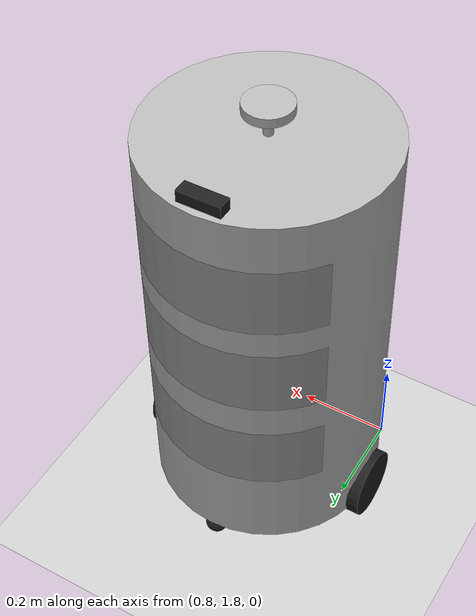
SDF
<sdf version="1.7">
 <world name="world">
  <gravity>0 0 -9.8</gravity>
  <physics name="default_physics" default="0" type="ode">
   <max_step_size>0.001</max_step_size>
   <real_time_factor>1</real_time_factor>
   <real_time_update_rate>1000</real_time_update_rate>
  </physics>
  <scene><ambient>0.6 0.6 0.6 1</ambient><background>0.4 0.4 0.4 1</background><shadows>0</shadows></scene>
  <light name="sun" type="directional">
   <pose>0 0 10 0 -0 0</pose>
   <diffuse>0.8 0.8 0.8 1</diffuse>
   <specular>0.2 0.2 0.2 1</specular>
   <attenuation>
    <range>1000</range>
    <constant>0.9</constant>
    <linear>0.01</linear>
    <quadratic>0.001</quadratic>
   </attenuation>
   <direction>-0.5 0.1 -0.9</direction>
   <spot><inner_angle>0</inner_angle><outer_angle>0</outer_angle><falloff>0</falloff></spot>
  </light>
  <model name="ground_plane">
   <static>1</static>
   <link name="link">
    <collision name="collision">
     <geometry><plane><normal>0 0 1</normal><size>100 100</size></plane></geometry>
     <surface>
      <contact><collide_bitmask>65535</collide_bitmask></contact>
      <friction><ode><mu>100</mu><mu2>50</mu2></ode></friction>
     </surface>
    </collision>
    <visual name="visual">
     <cast_shadows>0</cast_shadows>
     <geometry><plane><normal>0 0 1</normal><size>100 100</size></plane></geometry>
     <material>
      <script><uri>file://media/materials/scripts/gazebo.material</uri><name>Gazebo/Grey</name></script>
     </material>
    </visual>
   </link>
   <pose>0 0 -0.1 0 -0 0</pose>
  </model>
  <magnetic_field>6e-06 2.3e-05 -4.2e-05</magnetic_field>
  <atmosphere type="adiabatic"/>
  <spherical_coordinates>
   <surface_model>EARTH_WGS84</surface_model>
   <latitude_deg>0</latitude_deg>
   <longitude_deg>0</longitude_deg>
   <elevation>0</elevation>
   <heading_deg>0</heading_deg>
  </spherical_coordinates>
  <model name="mycar">
   <link name="base_footprint">
    <inertial>
     <pose>0.006055 0 0.540161 0 -0 0</pose>
     <mass>5.45</mass>
     <inertia>
      <ixx>0.513803</ixx>
      <ixy>0</ixy>
      <ixz>-0.0139372</ixz>
      <iyy>0.520863</iyy>
      <iyz>0</iyz>
      <izz>0.16361</izz>
     </inertia>
    </inertial>
    <collision name="base_footprint_fixed_joint_lump__base_link_collision">
     <pose>0 0 0.5 0 -0 0</pose>
     <geometry>
      <mesh><scale>1 1 1</scale><uri>/home/zj/graduate_design/src/zj_base/meshes/modle.dae</uri></mesh>
     </geometry>
    </collision>
    <collision name="base_footprint_fixed_joint_lump__depth_camera_collision_1">
     <pose>0.22 0 0.9625 0 -0 1.5705</pose>
     <geometry><box><size>0.09 0.03 0.025</size></box></geometry>
    </collision>
    <collision name="base_footprint_fixed_joint_lump__suport_collision_2">
     <pose>0 0 0.975 0 -0 0</pose>
     <geometry><cylinder><length>0.05</length><radius>0.01</radius></cylinder></geometry>
    </collision>
    <collision name="base_footprint_fixed_joint_lump__laser_collision_3">
     <pose>0 0 1.01 0 -0 0</pose>
     <geometry><cylinder><length>0.02</length><radius>0.05</radius></cylinder></geometry>
    </collision>
    <visual name="base_footprint_visual"><geometry><sphere><radius>0.001</radius></sphere></geometry></visual>
    <visual name="base_footprint_fixed_joint_lump__base_link_visual_1">
     <pose>0 0 0.5 0 -0 0</pose>
     <geometry>
      <mesh><scale>1 1 1</scale><uri>/home/zj/graduate_design/src/zj_base/meshes/modle.dae</uri></mesh>
     </geometry>
    </visual>
    <visual name="base_footprint_fixed_joint_lump__depth_camera_visual_2">
     <pose>0.22 0 0.9625 0 -0 1.5705</pose>
     <geometry><box><size>0.09 0.03 0.025</size></box></geometry>
     <material>
      <script><name>Gazebo/Black</name><uri>file://media/materials/scripts/gazebo.material</uri></script>
     </material>
    </visual>
    <visual name="base_footprint_fixed_joint_lump__suport_visual_3">
     <pose>0 0 0.975 0 -0 0</pose>
     <geometry><cylinder><length>0.05</length><radius>0.01</radius></cylinder></geometry>
    </visual>
    <visual name="base_footprint_fixed_joint_lump__laser_visual_4">
     <pose>0 0 1.01 0 -0 0</pose>
     <geometry><cylinder><length>0.02</length><radius>0.05</radius></cylinder></geometry>
    </visual>
    <sensor name="depth_camera_node" type="depth">
     <update_rate>30</update_rate>
     <camera name="depth_head">
      <horizontal_fov>1.52</horizontal_fov>
      <image><width>640</width><height>480</height><format>L8</format></image>
      <clip><near>0.2</near><far>10</far></clip>
      <noise><type>gaussian</type><mean>0</mean><stddev>0.01</stddev></noise>
     </camera>
     <plugin name="gazebo_depth_camera" filename="libgazebo_ros_depth_camera.so">
      <alwaysOn>1</alwaysOn>
      <updateRate>0.0</updateRate>
      <cameraName>/depth_camera</cameraName>
      <depthImageTopicName>depth/image_raw</depthImageTopicName>
      <depthImageCameraInfoTopicName>depth/camera_info</depthImageCameraInfoTopicName>
      <pointCloudTopicName>depth/points</pointCloudTopicName>
      <pointCloudSkip>2</pointCloudSkip>
      <frameName>depth_camera</frameName>
      <pointCloudCutoff>0.2</pointCloudCutoff>
      <pointCloudCutoffMax>8.0</pointCloudCutoffMax>
      <hackBaseline>0.05</hackBaseline>
      <distortionK1>0.0</distortionK1>
      <distortionK2>0.0</distortionK2>
      <distortionK3>0.0</distortionK3>
      <distortionT1>0.0</distortionT1>
      <distortionT2>0.0</distortionT2>
      <robotNamespace>/</robotNamespace>
     </plugin>
     <pose>0.22 0 0.9625 0 -0 0</pose>
     <depth><shift>0.0</shift><noise><type>gaussian</type><mean>0.0</mean><stddev>0.02</stddev></noise></depth>
    </sensor>
    <sensor name="rplidar" type="ray">
     <visualize>0</visualize>
     <update_rate>5.5</update_rate>
     <ray>
      <scan>
       <horizontal>
        <samples>360</samples>
        <resolution>1</resolution>
        <min_angle>-3.14159</min_angle>
        <max_angle>3.14159</max_angle>
       </horizontal>
       <vertical><samples>1</samples><min_angle>0</min_angle><max_angle>0</max_angle></vertical>
      </scan>
      <range><min>0.1</min><max>30</max><resolution>0.01</resolution></range>
      <noise><type>gaussian</type><mean>0</mean><stddev>0.01</stddev></noise>
     </ray>
     <plugin name="gazebo_rplidar" filename="libgazebo_ros_laser.so">
      <topicName>/scan</topicName>
      <frameName>laser</frameName>
      <robotNamespace>/</robotNamespace>
     </plugin>
     <pose>0 0 1.01 0 -0 0</pose>
    </sensor>
   </link>
   <joint name="back_wheel2base_link" type="revolute">
    <pose relative_to="base_footprint">-0.225 0 0.025 0 -0 0</pose>
    <parent>base_footprint</parent>
    <child>back_wheel</child>
    <axis>
     <xyz>1 0 0</xyz>
     <limit><lower>-1e+16</lower><upper>1e+16</upper></limit>
     <dynamics><spring_reference>0</spring_reference><spring_stiffness>0</spring_stiffness></dynamics>
    </axis>
   </joint>
   <link name="back_wheel">
    <pose relative_to="back_wheel2base_link">0 0 0 0 -0 0</pose>
    <inertial>
     <mass>0.1</mass>
     <inertia><ixx>2.5e-05</ixx><ixy>0</ixy><ixz>0</ixz><iyy>2.5e-05</iyy><iyz>0</iyz><izz>2.5e-05</izz></inertia>
    </inertial>
    <collision name="back_wheel_collision">
     <geometry><sphere><radius>0.025</radius></sphere></geometry>
     <surface>
      <contact><ode><kp>1e+06</kp><kd>100</kd></ode></contact>
      <friction><ode><mu>0</mu><mu2>0</mu2></ode></friction>
     </surface>
    </collision>
    <visual name="back_wheel_visual">
     <geometry><sphere><radius>0.025</radius></sphere></geometry>
     <material>
      <script><name>Gazebo/Black</name><uri>file://media/materials/scripts/gazebo.material</uri></script>
     </material>
    </visual>
   </link>
   <joint name="drawer22base_link" type="prismatic">
    <pose relative_to="base_footprint">0 0 0.5 0 -0 0</pose>
    <parent>base_footprint</parent>
    <child>drawer2</child>
    <axis>
     <xyz>1 0 0</xyz>
     <limit><lower>0</lower><upper>0.2</upper><effort>1000</effort><velocity>2</velocity></limit>
     <dynamics>
      <damping>0.1</damping>
      <friction>0</friction>
      <spring_reference>0</spring_reference>
      <spring_stiffness>0</spring_stiffness>
     </dynamics>
    </axis>
    <physics>
     <provide_feedback>1</provide_feedback>
     <ode><limit><cfm>0</cfm><erp>0.9</erp></limit><provide_feedback>1</provide_feedback></ode>
    </physics>
    <physics>
     <ode>
      <limit><cfm>0</cfm><erp>0.9</erp></limit>
      <suspension><cfm>0</cfm><erp>0.9</erp></suspension>
      <fdir1>1 0 0</fdir1>
      <friction>1.0 0.8 0.0</friction>
     </ode>
    </physics>
   </joint>
   <link name="drawer2">
    <pose relative_to="drawer22base_link">0 0 0 0 -0 0</pose>
    <inertial>
     <mass>2</mass>
     <inertia><ixx>0.001</ixx><ixy>0</ixy><ixz>0</ixz><iyy>0.001</iyy><iyz>0</iyz><izz>0.001</izz></inertia>
    </inertial>
    <collision name="drawer2_collision">
     <geometry>
      <mesh><scale>1 1 1</scale><uri>/home/zj/graduate_design/src/zj_base/meshes/box2.dae</uri></mesh>
     </geometry>
     <surface>
      <contact><ode><kp>1e+12</kp><kd>1000</kd><max_vel>10</max_vel><min_depth>0.0001</min_depth></ode></contact>
      <friction><ode><mu>1</mu><mu2>0.8</mu2></ode></friction>
     </surface>
    </collision>
    <visual name="drawer2_visual">
     <geometry>
      <mesh><scale>1 1 1</scale><uri>/home/zj/graduate_design/src/zj_base/meshes/box2.dae</uri></mesh>
     </geometry>
     <material>
      <script><name>Gazebo/Grey</name><uri>file://media/materials/scripts/gazebo.material</uri></script>
     </material>
    </visual>
    <self_collide>1</self_collide>
   </link>
   <joint name="drawer2base_link" type="prismatic">
    <pose relative_to="base_footprint">0 0 0.5 0 -0 0</pose>
    <parent>base_footprint</parent>
    <child>drawer</child>
    <axis>
     <xyz>1 0 0</xyz>
     <limit><lower>0</lower><upper>0.2</upper><effort>1000</effort><velocity>2</velocity></limit>
     <dynamics>
      <damping>0.1</damping>
      <friction>0</friction>
      <spring_reference>0</spring_reference>
      <spring_stiffness>0</spring_stiffness>
     </dynamics>
    </axis>
    <physics>
     <provide_feedback>1</provide_feedback>
     <ode><limit><cfm>0</cfm><erp>0.9</erp></limit><provide_feedback>1</provide_feedback></ode>
    </physics>
    <physics>
     <ode>
      <limit><cfm>0</cfm><erp>0.9</erp></limit>
      <suspension><cfm>0</cfm><erp>0.9</erp></suspension>
      <fdir1>1 0 0</fdir1>
      <friction>1.0 0.8 0.0</friction>
     </ode>
    </physics>
   </joint>
   <link name="drawer">
    <pose relative_to="drawer2base_link">0 0 0 0 -0 0</pose>
    <inertial>
     <mass>2</mass>
     <inertia><ixx>0.001</ixx><ixy>0</ixy><ixz>0</ixz><iyy>0.001</iyy><iyz>0</iyz><izz>0.001</izz></inertia>
    </inertial>
    <collision name="drawer_collision">
     <geometry>
      <mesh><scale>1 1 1</scale><uri>/home/zj/graduate_design/src/zj_base/meshes/mdae.dae</uri></mesh>
     </geometry>
     <surface>
      <contact><ode><kp>1e+12</kp><kd>1000</kd><max_vel>10</max_vel><min_depth>0.0001</min_depth></ode></contact>
      <friction><ode><mu>1</mu><mu2>0.8</mu2></ode></friction>
     </surface>
    </collision>
    <visual name="drawer_visual">
     <geometry>
      <mesh><scale>1 1 1</scale><uri>/home/zj/graduate_design/src/zj_base/meshes/mdae.dae</uri></mesh>
     </geometry>
     <material>
      <script><name>Gazebo/Grey</name><uri>file://media/materials/scripts/gazebo.material</uri></script>
     </material>
    </visual>
    <self_collide>1</self_collide>
   </link>
   <joint name="drawer32base_link" type="prismatic">
    <pose relative_to="base_footprint">0 0 0.5 0 -0 0</pose>
    <parent>base_footprint</parent>
    <child>drawer3</child>
    <axis>
     <xyz>1 0 0</xyz>
     <limit><lower>0</lower><upper>0.2</upper><effort>1000</effort><velocity>2</velocity></limit>
     <dynamics>
      <damping>0.1</damping>
      <friction>0</friction>
      <spring_reference>0</spring_reference>
      <spring_stiffness>0</spring_stiffness>
     </dynamics>
    </axis>
    <physics>
     <provide_feedback>1</provide_feedback>
     <ode><limit><cfm>0</cfm><erp>0.9</erp></limit><provide_feedback>1</provide_feedback></ode>
    </physics>
    <physics>
     <ode>
      <limit><cfm>0</cfm><erp>0.9</erp></limit>
      <suspension><cfm>0</cfm><erp>0.9</erp></suspension>
      <fdir1>1 0 0</fdir1>
      <friction>1.0 0.8 0.0</friction>
     </ode>
    </physics>
   </joint>
   <link name="drawer3">
    <pose relative_to="drawer32base_link">0 0 0 0 -0 0</pose>
    <inertial>
     <mass>2</mass>
     <inertia><ixx>0.001</ixx><ixy>0</ixy><ixz>0</ixz><iyy>0.001</iyy><iyz>0</iyz><izz>0.001</izz></inertia>
    </inertial>
    <collision name="drawer3_collision">
     <geometry>
      <mesh><scale>1 1 1</scale><uri>/home/zj/graduate_design/src/zj_base/meshes/box3.dae</uri></mesh>
     </geometry>
     <surface>
      <contact><ode><kp>1e+12</kp><kd>1000</kd><max_vel>10</max_vel><min_depth>0.0001</min_depth></ode></contact>
      <friction><ode><mu>1</mu><mu2>0.8</mu2></ode></friction>
     </surface>
    </collision>
    <visual name="drawer3_visual">
     <geometry>
      <mesh><scale>1 1 1</scale><uri>/home/zj/graduate_design/src/zj_base/meshes/box3.dae</uri></mesh>
     </geometry>
     <material>
      <script><name>Gazebo/Grey</name><uri>file://media/materials/scripts/gazebo.material</uri></script>
     </material>
    </visual>
    <self_collide>1</self_collide>
   </link>
   <joint name="front_wheel2base_link" type="revolute">
    <pose relative_to="base_footprint">0.225 0 0.025 0 -0 0</pose>
    <parent>base_footprint</parent>
    <child>front_wheel</child>
    <axis>
     <xyz>1 0 0</xyz>
     <limit><lower>-1e+16</lower><upper>1e+16</upper></limit>
     <dynamics><spring_reference>0</spring_reference><spring_stiffness>0</spring_stiffness></dynamics>
    </axis>
   </joint>
   <link name="front_wheel">
    <pose relative_to="front_wheel2base_link">0 0 0 0 -0 0</pose>
    <inertial>
     <mass>0.1</mass>
     <inertia><ixx>2.5e-05</ixx><ixy>0</ixy><ixz>0</ixz><iyy>2.5e-05</iyy><iyz>0</iyz><izz>2.5e-05</izz></inertia>
    </inertial>
    <collision name="front_wheel_collision">
     <geometry><sphere><radius>0.025</radius></sphere></geometry>
     <surface>
      <contact><ode><kp>1e+06</kp><kd>100</kd></ode></contact>
      <friction><ode><mu>0</mu><mu2>0</mu2></ode></friction>
     </surface>
    </collision>
    <visual name="front_wheel_visual">
     <geometry><sphere><radius>0.025</radius></sphere></geometry>
     <material>
      <script><name>Gazebo/Black</name><uri>file://media/materials/scripts/gazebo.material</uri></script>
     </material>
    </visual>
   </link>
   <joint name="left_wheel2base_link" type="revolute">
    <pose relative_to="base_footprint">0 0.25 0.075 0 -0 0</pose>
    <parent>base_footprint</parent>
    <child>left_wheel</child>
    <axis>
     <xyz>0 1 0</xyz>
     <limit><lower>-1e+16</lower><upper>1e+16</upper></limit>
     <dynamics><spring_reference>0</spring_reference><spring_stiffness>0</spring_stiffness></dynamics>
    </axis>
   </joint>
   <link name="left_wheel">
    <pose relative_to="left_wheel2base_link">0 0 0 0 -0 0</pose>
    <inertial>
     <mass>0.2</mass>
     <inertia>
      <ixx>0.00029625</ixx>
      <ixy>0</ixy>
      <ixz>0</ixz>
      <iyy>0.00029625</iyy>
      <iyz>0</iyz>
      <izz>0.0005625</izz>
     </inertia>
    </inertial>
    <collision name="left_wheel_collision">
     <pose>0 0 0 1.5708 -0 0</pose>
     <geometry><cylinder><length>0.03</length><radius>0.075</radius></cylinder></geometry>
    </collision>
    <visual name="left_wheel_visual">
     <pose>0 0 0 1.5708 -0 0</pose>
     <geometry><cylinder><length>0.03</length><radius>0.075</radius></cylinder></geometry>
     <material>
      <script><name>Gazebo/Black</name><uri>file://media/materials/scripts/gazebo.material</uri></script>
     </material>
    </visual>
   </link>
   <joint name="right_wheel2base_link" type="revolute">
    <pose relative_to="base_footprint">0 -0.25 0.075 0 -0 0</pose>
    <parent>base_footprint</parent>
    <child>right_wheel</child>
    <axis>
     <xyz>0 1 0</xyz>
     <limit><lower>-1e+16</lower><upper>1e+16</upper></limit>
     <dynamics><spring_reference>0</spring_reference><spring_stiffness>0</spring_stiffness></dynamics>
    </axis>
   </joint>
   <link name="right_wheel">
    <pose relative_to="right_wheel2base_link">0 0 0 0 -0 0</pose>
    <inertial>
     <mass>0.2</mass>
     <inertia>
      <ixx>0.00029625</ixx>
      <ixy>0</ixy>
      <ixz>0</ixz>
      <iyy>0.00029625</iyy>
      <iyz>0</iyz>
      <izz>0.0005625</izz>
     </inertia>
    </inertial>
    <collision name="right_wheel_collision">
     <pose>0 0 0 1.5708 -0 0</pose>
     <geometry><cylinder><length>0.03</length><radius>0.075</radius></cylinder></geometry>
    </collision>
    <visual name="right_wheel_visual">
     <pose>0 0 0 1.5708 -0 0</pose>
     <geometry><cylinder><length>0.03</length><radius>0.075</radius></cylinder></geometry>
     <material>
      <script><name>Gazebo/Black</name><uri>file://media/materials/scripts/gazebo.material</uri></script>
     </material>
    </visual>
   </link>
   <plugin name="gazebo_ros_control" filename="libgazebo_ros_control.so">
    <robotNamespace>/</robotNamespace>
    <robotSimType>gazebo_ros_control/DefaultRobotHWSim</robotSimType>
    <controlPeriod>0.001</controlPeriod>
    <jointInterfaceDefaults>
     <effort><p>100.0</p><i>1.0</i><d>5.0</d></effort>
     <velocity><p>1000.0</p><i>0.1</i><d>0.0</d></velocity>
    </jointInterfaceDefaults>
   </plugin>
   <frame name="depth_camera2base_link" attached_to="base_link"><pose>0.22 0 0.4625 0 -0 0</pose></frame>
   <frame name="depth_camera" attached_to="depth_camera2base_link"/>
   <frame name="laser2support" attached_to="suport"><pose>0 0 0.035 0 -0 0</pose></frame>
   <frame name="laser" attached_to="laser2support"/>
   <frame name="support2base_link" attached_to="base_link"><pose>0 0 0.475 0 -0 0</pose></frame>
   <frame name="suport" attached_to="support2base_link"/>
   <frame name="base_link2base_footprint" attached_to="base_footprint"><pose>0 0 0.5 0 -0 0</pose></frame>
   <frame name="base_link" attached_to="base_link2base_footprint"/>
   <pose>0.992657 1.99998 -4e-06 -1e-06 4e-06 1.57197</pose>
  </model>
 </world>
</sdf>
